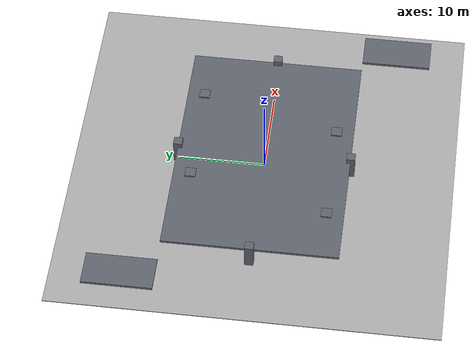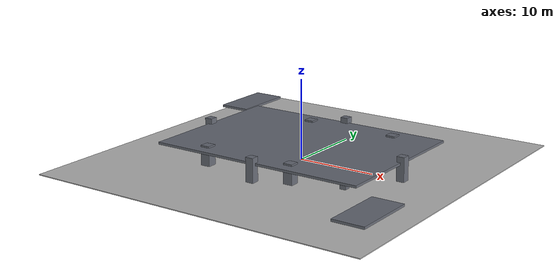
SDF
<?xml version="1.0" ?>
<sdf version="1.7">
  <world name="aerial_indoor">
    <physics type="ode">
      <max_step_size>0.01</max_step_size>
    </physics>
    <light name="sun" type="directional">
      <cast_shadows>true</cast_shadows>
      <pose>0 0 10 0 0 0</pose>
      <diffuse>0.8 0.8 0.8 1</diffuse>
      <specular>0.3 0.3 0.3 1</specular>
      <attenuation>
        <range>1000</range>
        <constant>0.9</constant>
        <linear>0.01</linear>
        <quadratic>0.001</quadratic>
      </attenuation>
      <direction>-0.5 0.3 -1.0</direction>
    </light>

    <model name="ground_plane">
      <static>true</static>
      <pose>0 0 -0.05 0 0 0</pose>
      <link name="link">
        <collision name="collision">
          <geometry>
            <box><size>44.0 44.0 0.1</size></box>
          </geometry>
        </collision>
        <visual name="visual">
          <geometry>
            <box><size>44.0 44.0 0.1</size></box>
          </geometry>
        </visual>
      </link>
    </model>

    <model name="obstacle_00">
      <static>true</static>
      <pose>0.000 0.000 2.150 0 0 0</pose>
      <link name="link">
        <collision name="collision">
          <geometry>
            <box><size>28.000 20.000 0.300</size></box>
          </geometry>
        </collision>
        <visual name="visual">
          <geometry>
            <box><size>28.000 20.000 0.300</size></box>
          </geometry>
          <material>
            <ambient>0.4 0.42 0.46 1</ambient>
            <diffuse>0.4 0.42 0.46 1</diffuse>
          </material>
        </visual>
      </link>
    </model>

    <model name="obstacle_01">
      <static>true</static>
      <pose>-10.000 -6.000 1.000 0 0 0</pose>
      <link name="link">
        <collision name="collision">
          <geometry>
            <box><size>0.800 0.800 2.000</size></box>
          </geometry>
        </collision>
        <visual name="visual">
          <geometry>
            <box><size>0.800 0.800 2.000</size></box>
          </geometry>
          <material>
            <ambient>0.4 0.42 0.46 1</ambient>
            <diffuse>0.4 0.42 0.46 1</diffuse>
          </material>
        </visual>
      </link>
    </model>

    <model name="obstacle_02">
      <static>true</static>
      <pose>10.000 -6.000 1.000 0 0 0</pose>
      <link name="link">
        <collision name="collision">
          <geometry>
            <box><size>0.800 0.800 2.000</size></box>
          </geometry>
        </collision>
        <visual name="visual">
          <geometry>
            <box><size>0.800 0.800 2.000</size></box>
          </geometry>
          <material>
            <ambient>0.4 0.42 0.46 1</ambient>
            <diffuse>0.4 0.42 0.46 1</diffuse>
          </material>
        </visual>
      </link>
    </model>

    <model name="obstacle_03">
      <static>true</static>
      <pose>-10.000 6.000 1.000 0 0 0</pose>
      <link name="link">
        <collision name="collision">
          <geometry>
            <box><size>0.800 0.800 2.000</size></box>
          </geometry>
        </collision>
        <visual name="visual">
          <geometry>
            <box><size>0.800 0.800 2.000</size></box>
          </geometry>
          <material>
            <ambient>0.4 0.42 0.46 1</ambient>
            <diffuse>0.4 0.42 0.46 1</diffuse>
          </material>
        </visual>
      </link>
    </model>

    <model name="obstacle_04">
      <static>true</static>
      <pose>10.000 6.000 1.000 0 0 0</pose>
      <link name="link">
        <collision name="collision">
          <geometry>
            <box><size>0.800 0.800 2.000</size></box>
          </geometry>
        </collision>
        <visual name="visual">
          <geometry>
            <box><size>0.800 0.800 2.000</size></box>
          </geometry>
          <material>
            <ambient>0.4 0.42 0.46 1</ambient>
            <diffuse>0.4 0.42 0.46 1</diffuse>
          </material>
        </visual>
      </link>
    </model>

    <model name="obstacle_05">
      <static>true</static>
      <pose>-14.000 0.000 1.500 0 0 0</pose>
      <link name="link">
        <collision name="collision">
          <geometry>
            <box><size>1.000 1.000 3.000</size></box>
          </geometry>
        </collision>
        <visual name="visual">
          <geometry>
            <box><size>1.000 1.000 3.000</size></box>
          </geometry>
          <material>
            <ambient>0.4 0.42 0.46 1</ambient>
            <diffuse>0.4 0.42 0.46 1</diffuse>
          </material>
        </visual>
      </link>
    </model>

    <model name="obstacle_06">
      <static>true</static>
      <pose>14.000 0.000 1.500 0 0 0</pose>
      <link name="link">
        <collision name="collision">
          <geometry>
            <box><size>1.000 1.000 3.000</size></box>
          </geometry>
        </collision>
        <visual name="visual">
          <geometry>
            <box><size>1.000 1.000 3.000</size></box>
          </geometry>
          <material>
            <ambient>0.4 0.42 0.46 1</ambient>
            <diffuse>0.4 0.42 0.46 1</diffuse>
          </material>
        </visual>
      </link>
    </model>

    <model name="obstacle_07">
      <static>true</static>
      <pose>0.000 -10.000 1.500 0 0 0</pose>
      <link name="link">
        <collision name="collision">
          <geometry>
            <box><size>1.000 1.000 3.000</size></box>
          </geometry>
        </collision>
        <visual name="visual">
          <geometry>
            <box><size>1.000 1.000 3.000</size></box>
          </geometry>
          <material>
            <ambient>0.4 0.42 0.46 1</ambient>
            <diffuse>0.4 0.42 0.46 1</diffuse>
          </material>
        </visual>
      </link>
    </model>

    <model name="obstacle_08">
      <static>true</static>
      <pose>0.000 10.000 1.500 0 0 0</pose>
      <link name="link">
        <collision name="collision">
          <geometry>
            <box><size>1.000 1.000 3.000</size></box>
          </geometry>
        </collision>
        <visual name="visual">
          <geometry>
            <box><size>1.000 1.000 3.000</size></box>
          </geometry>
          <material>
            <ambient>0.4 0.42 0.46 1</ambient>
            <diffuse>0.4 0.42 0.46 1</diffuse>
          </material>
        </visual>
      </link>
    </model>

    <model name="obstacle_09">
      <static>true</static>
      <pose>-18.000 14.000 1.350 0 0 0</pose>
      <link name="link">
        <collision name="collision">
          <geometry>
            <box><size>4.000 8.000 0.300</size></box>
          </geometry>
        </collision>
        <visual name="visual">
          <geometry>
            <box><size>4.000 8.000 0.300</size></box>
          </geometry>
          <material>
            <ambient>0.4 0.42 0.46 1</ambient>
            <diffuse>0.4 0.42 0.46 1</diffuse>
          </material>
        </visual>
      </link>
    </model>

    <model name="obstacle_10">
      <static>true</static>
      <pose>18.000 -14.000 1.350 0 0 0</pose>
      <link name="link">
        <collision name="collision">
          <geometry>
            <box><size>4.000 8.000 0.300</size></box>
          </geometry>
        </collision>
        <visual name="visual">
          <geometry>
            <box><size>4.000 8.000 0.300</size></box>
          </geometry>
          <material>
            <ambient>0.4 0.42 0.46 1</ambient>
            <diffuse>0.4 0.42 0.46 1</diffuse>
          </material>
        </visual>
      </link>
    </model>

    <model name="obstacle_11">
      <static>true</static>
      <pose>-8.000 -8.000 1.250 0 0 0</pose>
      <link name="link">
        <collision name="collision">
          <geometry>
            <box><size>1.200 1.200 2.500</size></box>
          </geometry>
        </collision>
        <visual name="visual">
          <geometry>
            <box><size>1.200 1.200 2.500</size></box>
          </geometry>
          <material>
            <ambient>0.4 0.42 0.46 1</ambient>
            <diffuse>0.4 0.42 0.46 1</diffuse>
          </material>
        </visual>
      </link>
    </model>

    <model name="obstacle_12">
      <static>true</static>
      <pose>-4.000 8.000 1.250 0 0 0</pose>
      <link name="link">
        <collision name="collision">
          <geometry>
            <box><size>1.200 1.200 2.500</size></box>
          </geometry>
        </collision>
        <visual name="visual">
          <geometry>
            <box><size>1.200 1.200 2.500</size></box>
          </geometry>
          <material>
            <ambient>0.4 0.42 0.46 1</ambient>
            <diffuse>0.4 0.42 0.46 1</diffuse>
          </material>
        </visual>
      </link>
    </model>

    <model name="obstacle_13">
      <static>true</static>
      <pose>4.000 -8.000 1.250 0 0 0</pose>
      <link name="link">
        <collision name="collision">
          <geometry>
            <box><size>1.200 1.200 2.500</size></box>
          </geometry>
        </collision>
        <visual name="visual">
          <geometry>
            <box><size>1.200 1.200 2.500</size></box>
          </geometry>
          <material>
            <ambient>0.4 0.42 0.46 1</ambient>
            <diffuse>0.4 0.42 0.46 1</diffuse>
          </material>
        </visual>
      </link>
    </model>

    <model name="obstacle_14">
      <static>true</static>
      <pose>8.000 8.000 1.250 0 0 0</pose>
      <link name="link">
        <collision name="collision">
          <geometry>
            <box><size>1.200 1.200 2.500</size></box>
          </geometry>
        </collision>
        <visual name="visual">
          <geometry>
            <box><size>1.200 1.200 2.500</size></box>
          </geometry>
          <material>
            <ambient>0.4 0.42 0.46 1</ambient>
            <diffuse>0.4 0.42 0.46 1</diffuse>
          </material>
        </visual>
      </link>
    </model>

  </world>
</sdf>
